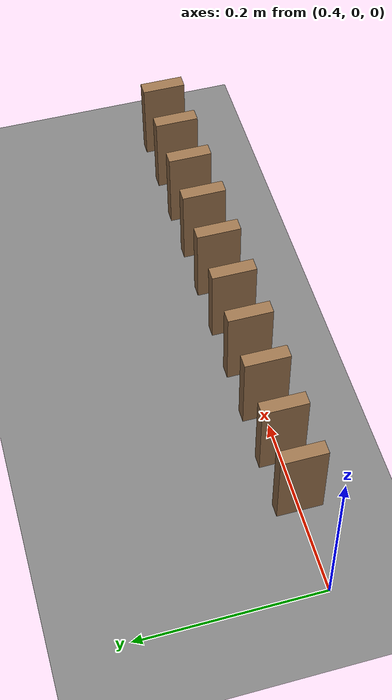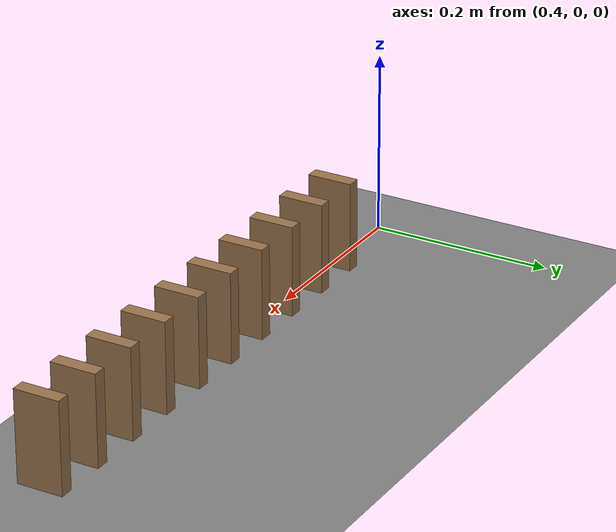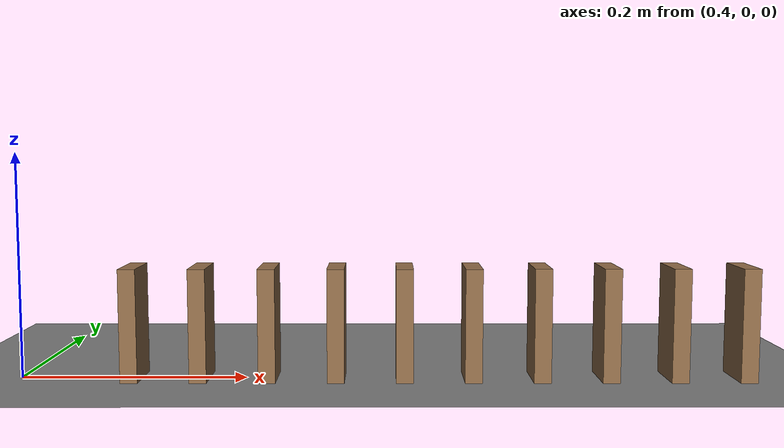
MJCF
<mujoco model="ten_dominoes">
  <compiler angle="radian"/>
  <option timestep="0.002"/>
  <worldbody>
    <geom name="floor" type="plane" size="6 6 0.1" friction="0.8 0.005 0.002"/>
    <body name="domino1" pos="0.5 0 0.05">
      <freejoint/>
      <geom name="domino1" type="box" pos="0 0 0" size="0.0075 0.025 0.05" mass="0.05" friction="0.5 0.005 0.0001" rgba="0.6 0.45 0.3 1"/>
    </body>
    <body name="domino2" pos="0.56 0 0.05">
      <freejoint/>
      <geom name="domino2" type="box" pos="0 0 0" size="0.0075 0.025 0.05" mass="0.05" friction="0.5 0.005 0.0001" rgba="0.6 0.45 0.3 1"/>
    </body>
    <body name="domino3" pos="0.62 0 0.05">
      <freejoint/>
      <geom name="domino3" type="box" pos="0 0 0" size="0.0075 0.025 0.05" mass="0.05" friction="0.5 0.005 0.0001" rgba="0.6 0.45 0.3 1"/>
    </body>
    <body name="domino4" pos="0.68 0 0.05">
      <freejoint/>
      <geom name="domino4" type="box" pos="0 0 0" size="0.0075 0.025 0.05" mass="0.05" friction="0.5 0.005 0.0001" rgba="0.6 0.45 0.3 1"/>
    </body>
    <body name="domino5" pos="0.74 0 0.05">
      <freejoint/>
      <geom name="domino5" type="box" pos="0 0 0" size="0.0075 0.025 0.05" mass="0.05" friction="0.5 0.005 0.0001" rgba="0.6 0.45 0.3 1"/>
    </body>
    <body name="domino6" pos="0.8 0 0.05">
      <freejoint/>
      <geom name="domino6" type="box" pos="0 0 0" size="0.0075 0.025 0.05" mass="0.05" friction="0.5 0.005 0.0001" rgba="0.6 0.45 0.3 1"/>
    </body>
    <body name="domino7" pos="0.86 0 0.05">
      <freejoint/>
      <geom name="domino7" type="box" pos="0 0 0" size="0.0075 0.025 0.05" mass="0.05" friction="0.5 0.005 0.0001" rgba="0.6 0.45 0.3 1"/>
    </body>
    <body name="domino8" pos="0.92 0 0.05">
      <freejoint/>
      <geom name="domino8" type="box" pos="0 0 0" size="0.0075 0.025 0.05" mass="0.05" friction="0.5 0.005 0.0001" rgba="0.6 0.45 0.3 1"/>
    </body>
    <body name="domino9" pos="0.98 0 0.05">
      <freejoint/>
      <geom name="domino9" type="box" pos="0 0 0" size="0.0075 0.025 0.05" mass="0.05" friction="0.5 0.005 0.0001" rgba="0.6 0.45 0.3 1"/>
    </body>
    <body name="domino10" pos="1.04 0 0.05">
      <freejoint/>
      <geom name="domino10" type="box" pos="0 0 0" size="0.0075 0.025 0.05" mass="0.05" friction="0.5 0.005 0.0001" rgba="0.6 0.45 0.3 1"/>
    </body>
  </worldbody>
  <keyframe>
    <key name="start" qpos="0.5 0 0.05 1 0 0 0 0.56 0 0.05 1 0 0 0 0.62 0 0.05 1 0 0 0 0.68 0 0.05 1 0 0 0 0.74 0 0.05 1 0 0 0 0.8 0 0.05 1 0 0 0 0.86 0 0.05 1 0 0 0 0.92 0 0.05 1 0 0 0 0.98 0 0.05 1 0 0 0 1.04 0 0.05 1 0 0 0" qvel="0 0 0 0 10 0 0 0 0 0 0 0 0 0 0 0 0 0 0 0 0 0 0 0 0 0 0 0 0 0 0 0 0 0 0 0 0 0 0 0 0 0 0 0 0 0 0 0 0 0 0 0 0 0 0 0 0 0 0 0"/>
  </keyframe>
</mujoco>
